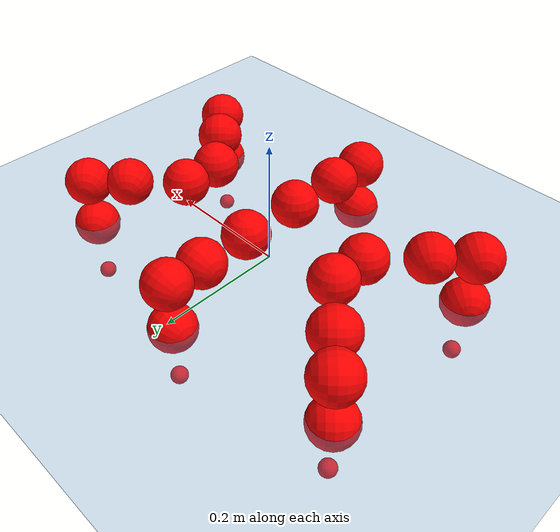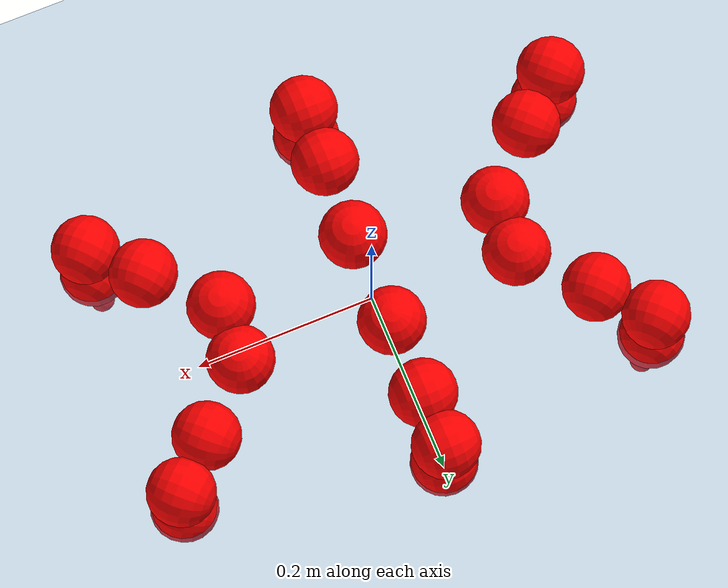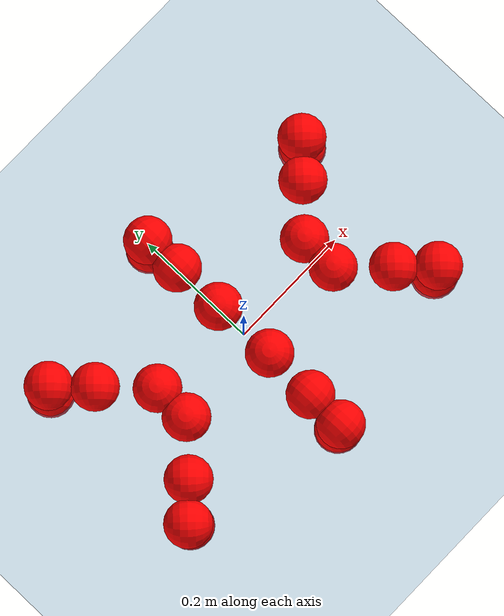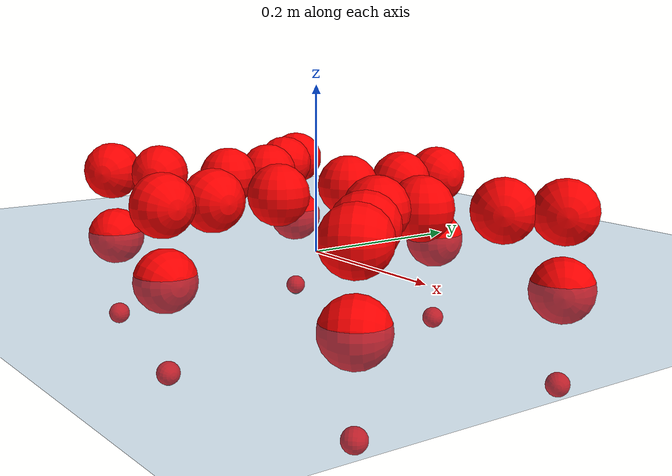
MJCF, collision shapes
<mujoco model="Golem">
  <compiler angle="radian" assetdir="assets" balanceinertia="true" inertiafromgeom="false"/>

  <option timestep="0.005" density="1.2" viscosity="2e-05"/>

  <size nkey="1"/>

  <visual>
    <quality shadowsize="8192"/>
    <map shadowclip="0.5"/>
  </visual>

  <default>
    <default class="/">
      <joint armature="0.01" damping="0.01" frictionloss="0.01"/>
      <geom contype="0" conaffinity="0" group="1" solref="-1000 -80"/>
      <site size="0.01 0.005 0.005" group="5"/>
      <general forcelimited="true" biastype="affine" gainprm="25" biasprm="0 -25 -0.5"/>
      <default class="visual">
        <geom type="mesh" group="2"/>
      </default>
      <default class="collision">
        <geom group="3"/>
      </default>
      <default class="foot">
        <geom size="0.01 0 0" condim="6" group="4" priority="1" solimp="0.015 1 0.01"/>
      </default>
      <default class="reward_collision_sphere">
        <geom group="5" rgba="1 0 0 1"/>
      </default>
    </default>
  </default>

  <asset>
    <texture type="skybox" colorspace="auto" name="//unnamed_texture_0" builtin="gradient" rgb1="0.95 0.95 0.95" rgb2="0.95 0.95 0.95" width="100" height="600"/>
    <texture type="2d" colorspace="auto" name="texplane" builtin="checker" rgb1="0.345 0.575 0.748" rgb2="0.345 0.575 0.748" markrgb="1 1 1" width="512" height="512"/>
    <material name="MatPlane" class="/" texture="texplane" texuniform="true" texrepeat="2 2" specular="0.9"/>
    <mesh name="body" class="/" file="body.stl" scale="0.001 0.001 0.001"/>
    <mesh name="coxa" class="/" file="coxa.stl" scale="0.001 0.001 0.001"/>
    <mesh name="femur" class="/" file="femur.stl" scale="0.001 0.001 0.001"/>
    <mesh name="tibia" class="/" file="tibia.stl" scale="0.001 0.001 0.001"/>
    <mesh name="tarsus" class="/" file="tarsus.stl" scale="0.001 0.001 0.001"/>
  </asset>

  <worldbody>
    <geom name="floor" class="/" size="100 100 0.125" type="plane" group="0" material="MatPlane"/>
    <light name="toplight_shadow" class="/" pos="0 0 5" dir="0.0990148 0.0990148 -0.990148" type="directional" ambient="0.04 0.04 0.04" diffuse="0.55 0.55 0.55" specular="0.12 0.12 0.12"/>
    <light name="toplight_fill" class="/" pos="0 0 5" dir="0.0990148 0.0990148 -0.990148" type="directional" castshadow="false" ambient="0.04 0.04 0.04" diffuse="0.3 0.3 0.3" specular="0.08 0.08 0.08"/>
    <body name="trunk" pos="0.000897197 -0.000999184 0.00101596" quat="1 0.000309897 0.00032775 -0.000228372">
      <inertial pos="0.00267623 -0.00134411 -0.00104803" quat="0.99999 0.000312755 -0.00446758 0.000300874" mass="3.01261" diaginertia="0.0104936 0.000839913 0.0218221"/>
      <joint name="//unnamed_joint_0" type="free"/>
      <geom name="//unnamed_geom_1" class="/" pos="0 0 0.0739913" quat="1 0 0 0" type="mesh" rgba="0.9 0.9 0.9 1" mesh="body"/>
      <site name="imu" class="/" pos="0.129487 -0.00419186 0.10208" size="0.00919711"/>
      <camera name="track" class="/" pos="0 -1.21298 0" quat="0.707107 0.707107 0 0" mode="trackcom"/>
      <camera name="ego_camera" class="/" pos="0.129549 0 0.115611" quat="-0.5 -0.5 0.5 0.5"/>
      <body name="coxa_RR" pos="-0.17609 -0.0509718 0.0746847" quat="0.382527 1.28128e-05 -8.26311e-05 -0.923944">
        <inertial pos="0.000426061 -0.000948676 0.000976878" quat="1 0.000271608 0.00025059 -0.000163383" mass="0.154215" diaginertia="0.00970043 0.000802349 0.0203819"/>
        <joint name="coxa_joint_RR" class="/" pos="0 0 0" axis="0.00361917 -0.00865567 -0.999956" stiffness="0.000611563" range="-3.17188 3.14028" armature="0.00886041" damping="0" frictionloss="0.00922589"/>
        <geom name="//unnamed_geom_2" class="/" type="mesh" rgba="0.2 0.2 0.2 1" mesh="coxa"/>
        <geom name="//unnamed_geom_3" class="reward_collision_sphere" size="0.0367885" pos="-0.0298959 0 0"/>
        <body name="femur_RR" pos="0.0619961 0.00138415 0.00168799" quat="0.500147 -0.49982 0.500344 0.499688">
          <inertial pos="-0.00107031 -0.000175001 -0.00114652" quat="0.999996 0.00228222 0.00113792 -0.000914376" mass="0.152511" diaginertia="0.00983045 0.000798395 0.0201876"/>
          <joint name="femur_joint_RR" class="/" pos="0 0 0" axis="0.0125073 0.00715744 -0.999896" range="-3.13786 3.12688" armature="0.0092292" damping="0.00209674" frictionloss="0.00930525"/>
          <geom name="//unnamed_geom_4" class="/" type="mesh" rgba="0.9 0.9 0.9 1" mesh="femur"/>
          <geom name="//unnamed_geom_5" class="reward_collision_sphere" size="0.0367885"/>
          <body name="tibia_RR" pos="-0.00162234 -0.0655752 -0.00167663" quat="-9.98996e-05 1 2.33603e-07 5.85196e-05">
            <inertial pos="-0.000188105 -0.00255579 0.000133141" quat="0.999909 0.0124498 0.00506764 0.000592361" mass="0.155549" diaginertia="0.0100732 0.000814777 0.0202366"/>
            <joint name="tibia_joint_RR" class="/" pos="0 0 0" axis="0.0103883 -0.00247503 0.999943" range="-3.10468 3.15887" armature="0.00907359" damping="0.0101946" frictionloss="0.00931751"/>
            <geom name="//unnamed_geom_6" class="/" type="mesh" rgba="0.2 0.2 0.2 1" mesh="tibia"/>
            <geom name="//unnamed_geom_7" class="reward_collision_sphere" size="0.0367885"/>
            <body name="tarsus_RR" pos="0.0871193 -0.00270221 -0.00186867" quat="1 -0.00033358 1.25639e-05 0.000381226">
              <inertial pos="0.0598855 0.000439763 -0.00185644" quat="0.501285 0.502662 0.48896 0.506915" mass="0.161225" diaginertia="0.0100331 0.000836913 0.0201529"/>
              <joint name="tarsus_joint_RR" class="/" pos="0 0 0" axis="-0.00217461 -0.00153056 0.999996" range="-3.17379 3.15715" armature="0.00955751" damping="0" frictionloss="0.0102686"/>
              <geom name="//unnamed_geom_8" class="/" type="mesh" rgba="0.9 0.9 0.9 1" mesh="tarsus"/>
              <geom name="foot_1" class="foot" size="0.00941753" pos="0.111611 0 0" quat="0 -0.707107 0 0.707107"/>
              <geom name="//unnamed_geom_10" class="reward_collision_sphere" size="0.0367885"/>
              <geom name="//unnamed_geom_11" class="reward_collision_sphere" size="0.0137957" pos="0.107127 0 0"/>
              <site name="foot_1" class="foot" pos="0.111611 0 0" quat="0 -0.707107 0 0.707107" size="0.00919711"/>
            </body>
          </body>
        </body>
      </body>
      <body name="coxa_RM" pos="-0.00124582 -0.0823957 0.0732146" quat="0.707548 0.000926075 -0.000101758 -0.706664">
        <inertial pos="0.00218755 0.00048451 -0.00211645" quat="1 0.000350856 0.000705857 -0.00017381" mass="0.156922" diaginertia="0.0098071 0.00084341 0.0205431"/>
        <joint name="coxa_joint_RM" class="/" pos="0 0 0" axis="-0.00439602 -0.000461435 -0.99999" range="-3.13678 3.14168" armature="0.0101928" damping="0.0188522" frictionloss="0.00903759"/>
        <geom name="//unnamed_geom_12" class="/" type="mesh" rgba="0.2 0.2 0.2 1" mesh="coxa"/>
        <geom name="//unnamed_geom_13" class="reward_collision_sphere" size="0.0367885" pos="-0.0298959 0 0"/>
        <body name="femur_RM" pos="0.0562686 -0.0030966 0.00146975" quat="0.500037 -0.500575 0.499757 0.49963">
          <inertial pos="0.0026413 -0.00164502 6.69938e-05" quat="0.999997 0.0023446 0.00116488 0.000290837" mass="0.150499" diaginertia="0.00917993 0.00079013 0.0192839"/>
          <joint name="femur_joint_RM" class="/" pos="0 0 0" axis="-0.00927327 0.0016724 -0.999956" range="-3.13292 3.08498" armature="0.0087817" damping="0.0202545" frictionloss="0.00876833"/>
          <geom name="//unnamed_geom_14" class="/" type="mesh" rgba="0.9 0.9 0.9 1" mesh="femur"/>
          <geom name="//unnamed_geom_15" class="reward_collision_sphere" size="0.0367885"/>
          <body name="tibia_RM" pos="-0.000659358 -0.0627849 -0.00106954" quat="-0.000212266 1 -3.32883e-05 0.000650153">
            <inertial pos="-0.00147558 0.00274149 3.00763e-05" quat="0.999979 -0.00103628 0.00565343 -0.0030731" mass="0.151331" diaginertia="0.0097058 0.000807032 0.020251"/>
            <joint name="tibia_joint_RM" class="/" pos="0 0 0" axis="0.00226049 -0.00285779 0.999993" range="-3.12889 3.1697" armature="0.00954454" damping="0.0217985" frictionloss="0.0092359"/>
            <geom name="//unnamed_geom_16" class="/" type="mesh" rgba="0.2 0.2 0.2 1" mesh="tibia"/>
            <geom name="//unnamed_geom_17" class="reward_collision_sphere" size="0.0367885"/>
            <body name="tarsus_RM" pos="0.0850071 -0.0013103 0.000409169" quat="1 -2.40178e-05 8.75329e-05 -3.9836e-05">
              <inertial pos="0.0623821 9.445e-05 -0.000534088" quat="0.500548 0.497788 0.500313 0.501344" mass="0.160292" diaginertia="0.00981587 0.000817706 0.0213571"/>
              <joint name="tarsus_joint_RM" class="/" pos="0 0 0" axis="-0.000904779 -0.0055696 0.999984" range="-3.18448 3.08902" armature="0.00936014" damping="0.00629193" frictionloss="0.00816076"/>
              <geom name="//unnamed_geom_18" class="/" type="mesh" rgba="0.9 0.9 0.9 1" mesh="tarsus"/>
              <geom name="foot_2" class="foot" size="0.0098419" pos="0.111611 0 0" quat="0 -0.707107 0 0.707107"/>
              <geom name="//unnamed_geom_20" class="reward_collision_sphere" size="0.0367885"/>
              <geom name="//unnamed_geom_21" class="reward_collision_sphere" size="0.0137957" pos="0.107127 0 0"/>
              <site name="foot_2" class="foot" pos="0.111611 0 0" quat="0 -0.707107 0 0.707107" size="0.00919711"/>
            </body>
          </body>
        </body>
      </body>
      <body name="coxa_RF" pos="0.17753 -0.0532821 0.0771162" quat="0.923879 -8.67292e-07 -1.63259e-06 -0.382684">
        <inertial pos="0.00123006 -0.00274631 0.00242702" quat="0.999909 0.00355903 0.00114713 0.0129584" mass="0.147209" diaginertia="0.00961399 0.000800963 0.0201869"/>
        <joint name="coxa_joint_RF" class="/" pos="0 0 0" axis="0.00576773 -0.00661651 -0.999961" range="-3.08476 3.15355" armature="0.00803703" damping="0" frictionloss="0.00895003"/>
        <geom name="//unnamed_geom_22" class="/" type="mesh" rgba="0.2 0.2 0.2 1" mesh="coxa"/>
        <geom name="//unnamed_geom_23" class="reward_collision_sphere" size="0.0367885" pos="-0.0298959 0 0"/>
        <body name="femur_RF" pos="0.0599411 -0.0008922 -0.00109307" quat="0.500099 -0.499857 0.500097 0.499946">
          <inertial pos="-0.0020274 0.00256665 0.00044506" quat="0.999991 -0.00183198 0.000320866 -0.00380321" mass="0.155395" diaginertia="0.0101013 0.000849946 0.021535"/>
          <joint name="femur_joint_RF" class="/" pos="0 0 0" axis="-0.00181508 0.000124202 -0.999998" range="-3.1401 3.12704" armature="0.00917937" damping="0.00535846" frictionloss="0.00895218"/>
          <geom name="//unnamed_geom_24" class="/" type="mesh" rgba="0.9 0.9 0.9 1" mesh="femur"/>
          <geom name="//unnamed_geom_25" class="reward_collision_sphere" size="0.0367885"/>
          <body name="tibia_RF" pos="6.86284e-06 -0.0666099 -0.000115526" quat="0.000106279 1 1.01262e-05 5.54075e-05">
            <inertial pos="-9.76009e-05 0.000190105 -0.00268472" quat="0.999916 -0.00205568 -0.00652161 -0.0110245" mass="0.156815" diaginertia="0.0100503 0.000800847 0.0214709"/>
            <joint name="tibia_joint_RF" class="/" pos="0 0 0" axis="-0.00382528 2.88192e-05 0.999993" range="-3.14965 3.15693" armature="0.00933559" damping="0.0074131" frictionloss="0.00969248"/>
            <geom name="//unnamed_geom_26" class="/" type="mesh" rgba="0.2 0.2 0.2 1" mesh="tibia"/>
            <geom name="//unnamed_geom_27" class="reward_collision_sphere" size="0.0367885"/>
            <body name="tarsus_RF" pos="0.0872152 -0.000152652 0.000165936" quat="0.999999 -0.000161163 0.0010105 0.000388639">
              <inertial pos="0.0594916 -0.000893104 -0.000867598" quat="0.502182 0.500225 0.498731 0.498854" mass="0.158697" diaginertia="0.0100917 0.000806432 0.0202965"/>
              <joint name="tarsus_joint_RF" class="/" pos="0 0 0" axis="-0.00124759 -0.0059132 0.999982" stiffness="0.0232977" range="-3.09419 3.1432" armature="0.00857109" damping="0" frictionloss="0.00872847"/>
              <geom name="//unnamed_geom_28" class="/" type="mesh" rgba="0.9 0.9 0.9 1" mesh="tarsus"/>
              <geom name="foot_3" class="foot" size="0.00940599" pos="0.111611 0 0" quat="0 -0.707107 0 0.707107"/>
              <geom name="//unnamed_geom_30" class="reward_collision_sphere" size="0.0367885"/>
              <geom name="//unnamed_geom_31" class="reward_collision_sphere" size="0.0137957" pos="0.107127 0 0"/>
              <site name="foot_3" class="foot" pos="0.111611 0 0" quat="0 -0.707107 0 0.707107" size="0.00919711"/>
            </body>
          </body>
        </body>
      </body>
      <body name="coxa_LR" pos="-0.17487 0.051881 0.0752524" quat="0.382914 1.86e-05 -1.64098e-05 0.923784">
        <inertial pos="-0.00181065 -0.00267404 1.56895e-05" quat="0.999939 0.00869799 0.00481465 0.00480472" mass="0.149771" diaginertia="0.00988528 0.000778802 0.0194636"/>
        <joint name="coxa_joint_LR" class="/" pos="0 0 0" axis="0.000159615 0.000780434 -1" range="-3.16036 3.14647" armature="0.00920932" damping="0.0199785" frictionloss="0.00936008"/>
        <geom name="//unnamed_geom_32" class="/" type="mesh" rgba="0.2 0.2 0.2 1" mesh="coxa"/>
        <geom name="//unnamed_geom_33" class="reward_collision_sphere" size="0.0367885" pos="-0.0298959 0 0"/>
        <body name="femur_LR" pos="0.0621827 -0.00396044 0.000335002" quat="0.499868 -0.499872 0.500444 0.499815">
          <inertial pos="-0.000466858 -0.00261165 -0.000972251" quat="1 -0.000207644 -3.79326e-05 -0.00072916" mass="0.154329" diaginertia="0.00946931 0.000837341 0.0199118"/>
          <joint name="femur_joint_LR" class="/" pos="0 0 0" axis="-5.36098e-05 0.000726205 1" range="-3.0871 3.14468" armature="0.00940294" damping="0.000990602" frictionloss="0.00914849"/>
          <geom name="//unnamed_geom_34" class="/" type="mesh" rgba="0.9 0.9 0.9 1" mesh="femur"/>
          <geom name="//unnamed_geom_35" class="reward_collision_sphere" size="0.0367885"/>
          <body name="tibia_LR" pos="0.00144363 -0.068843 -0.00329822" quat="-0.000302744 1 0.000171726 -0.000395536">
            <inertial pos="0.0010165 -0.00230577 -0.000304685" quat="0.999916 -0.00570297 -0.00258668 0.0113772" mass="0.152208" diaginertia="0.00940478 0.000796512 0.0204092"/>
            <joint name="tibia_joint_LR" class="/" pos="0 0 0" axis="-0.00066497 0.000207793 -1" range="-3.11993 3.19279" armature="0.00885117" damping="0" frictionloss="0.00913003"/>
            <geom name="//unnamed_geom_36" class="/" type="mesh" rgba="0.2 0.2 0.2 1" mesh="tibia"/>
            <geom name="//unnamed_geom_37" class="reward_collision_sphere" size="0.0367885"/>
            <body name="tarsus_LR" pos="0.0869094 0.0021133 -0.00212838" quat="1 -0.000508559 -0.000185968 0.000813304">
              <inertial pos="0.0622671 -0.00239197 -0.00247422" quat="0.499866 0.500124 0.499927 0.500083" mass="0.156476" diaginertia="0.00981509 0.000811088 0.0199436"/>
              <joint name="tarsus_joint_LR" class="/" pos="0 0 0" axis="0.0138564 -0.00714494 -0.999878" range="-3.14165 3.11241" armature="0.00829596" damping="0" frictionloss="0.00860182"/>
              <geom name="//unnamed_geom_38" class="/" type="mesh" rgba="0.9 0.9 0.9 1" mesh="tarsus"/>
              <geom name="foot_4" class="foot" size="0.0101409" pos="0.111611 0 0" quat="0.707107 0 -0.707107 0"/>
              <geom name="//unnamed_geom_40" class="reward_collision_sphere" size="0.0367885"/>
              <geom name="//unnamed_geom_41" class="reward_collision_sphere" size="0.0137957" pos="0.107127 0 0"/>
              <site name="foot_4" class="foot" pos="0.111611 0 0" quat="0.707107 0 -0.707107 0" size="0.00919711"/>
            </body>
          </body>
        </body>
      </body>
      <body name="coxa_LM" pos="-0.00336319 0.0802571 0.0749166" quat="0.707329 -0.000395877 5.25331e-05 0.706885">
        <inertial pos="0.00100887 -0.00204695 6.37786e-05" quat="0.999915 -0.0123421 0.00263854 -0.00339156" mass="0.155925" diaginertia="0.0100635 0.000845969 0.0212815"/>
        <joint name="coxa_joint_LM" class="/" pos="0 0 0" axis="-0.00962641 -0.00850051 -0.999918" range="-3.12687 3.11736" armature="0.0088659" damping="0.0111277" frictionloss="0.00983651"/>
        <geom name="//unnamed_geom_42" class="/" type="mesh" rgba="0.2 0.2 0.2 1" mesh="coxa"/>
        <geom name="//unnamed_geom_43" class="reward_collision_sphere" size="0.0367885" pos="-0.0298959 0 0"/>
        <body name="femur_LM" pos="0.054176 0.000616471 -0.00129698" quat="0.499656 -0.500199 0.500129 0.500016">
          <inertial pos="0.00187159 0.000672223 0.00093147" quat="0.99994 0.00691077 -0.0063773 0.00566542" mass="0.160187" diaginertia="0.0097637 0.000871963 0.0214306"/>
          <joint name="femur_joint_LM" class="/" pos="0 0 0" axis="0.00320812 5.04622e-06 0.999995" range="-3.15696 3.13803" armature="0.00973962" damping="0.0065415" frictionloss="0.00833887"/>
          <geom name="//unnamed_geom_44" class="/" type="mesh" rgba="0.9 0.9 0.9 1" mesh="femur"/>
          <geom name="//unnamed_geom_45" class="reward_collision_sphere" size="0.0367885"/>
          <body name="tibia_LM" pos="-0.00184738 -0.0604042 0.00056461" quat="0.00026238 0.999999 0.000235971 -0.00106448">
            <inertial pos="0.00140638 0.000641418 -0.00258138" quat="0.999911 -0.0106764 0.00797623 0.000425747" mass="0.156544" diaginertia="0.00986881 0.000856873 0.0211167"/>
            <joint name="tibia_joint_LM" class="/" pos="0 0 0" axis="-0.00610097 0.00314492 -0.999976" range="-3.13531 3.13896" armature="0.00933955" damping="0.00012491" frictionloss="0.00809498"/>
            <geom name="//unnamed_geom_46" class="/" type="mesh" rgba="0.2 0.2 0.2 1" mesh="tibia"/>
            <geom name="//unnamed_geom_47" class="reward_collision_sphere" size="0.0367885"/>
            <body name="tarsus_LM" pos="0.085372 -1.81764e-05 -0.000223891" quat="0.999999 -0.000616164 -0.000857001 -0.000373863">
              <inertial pos="0.06063 -0.00105887 0.00100174" quat="0.506559 0.488959 0.503742 0.50056" mass="0.161285" diaginertia="0.0101856 0.00082601 0.0207484"/>
              <joint name="tarsus_joint_LM" class="/" pos="0 0 0" axis="0.0112236 0.0026887 -0.999933" stiffness="0.00586167" range="-3.1427 3.13754" armature="0.00913251" damping="0" frictionloss="0.0104201"/>
              <geom name="//unnamed_geom_48" class="/" type="mesh" rgba="0.9 0.9 0.9 1" mesh="tarsus"/>
              <geom name="foot_5" class="foot" size="0.00921156" pos="0.111611 0 0" quat="0.707107 0 -0.707107 0"/>
              <geom name="//unnamed_geom_50" class="reward_collision_sphere" size="0.0367885"/>
              <geom name="//unnamed_geom_51" class="reward_collision_sphere" size="0.0137957" pos="0.107127 0 0"/>
              <site name="foot_5" class="foot" pos="0.111611 0 0" quat="0.707107 0 -0.707107 0" size="0.00919711"/>
            </body>
          </body>
        </body>
      </body>
      <body name="coxa_LF" pos="0.179814 0.0494525 0.0721378" quat="0.924049 -8.88712e-05 6.34621e-05 0.382274">
        <inertial pos="-0.000348309 0.000213954 0.00267785" quat="0.999943 0.0104159 -0.00116215 0.00223444" mass="0.151709" diaginertia="0.00944032 0.000842936 0.0200951"/>
        <joint name="coxa_joint_LF" class="/" pos="0 0 0" axis="0.00182765 -0.0158923 -0.999872" range="-3.12072 3.14189" armature="0.00803515" damping="0" frictionloss="0.010375"/>
        <geom name="//unnamed_geom_52" class="/" type="mesh" rgba="0.2 0.2 0.2 1" mesh="coxa"/>
        <geom name="//unnamed_geom_53" class="reward_collision_sphere" size="0.0367885" pos="-0.0298959 0 0"/>
        <body name="femur_LF" pos="0.0589284 0.000298322 0.000481504" quat="0.499789 -0.500118 0.499983 0.500109">
          <inertial pos="-0.00267661 -0.000546566 0.00251587" quat="1 -0.000220552 -0.000152938 -0.000270804" mass="0.155607" diaginertia="0.0102191 0.000820063 0.020702"/>
          <joint name="femur_joint_LF" class="/" pos="0 0 0" axis="-0.00163733 -7.41756e-06 0.999999" range="-3.1291 3.13183" armature="0.00985515" damping="0.00161011" frictionloss="0.00871914"/>
          <geom name="//unnamed_geom_54" class="/" type="mesh" rgba="0.9 0.9 0.9 1" mesh="femur"/>
          <geom name="//unnamed_geom_55" class="reward_collision_sphere" size="0.0367885"/>
          <body name="tibia_LF" pos="-0.000499669 -0.0648537 -0.000134039" quat="0.000508902 1 0.00032865 0.000147221">
            <inertial pos="-0.000100731 -0.0023503 0.000748367" quat="1 1.77601e-07 5.2337e-07 5.50442e-07" mass="0.150386" diaginertia="0.00919971 0.000798016 0.0198583"/>
            <joint name="tibia_joint_LF" class="/" pos="0 0 0" axis="0.000805225 -0.00257257 -0.999996" range="-3.14636 3.12807" armature="0.0101557" damping="0" frictionloss="0.00943284"/>
            <geom name="//unnamed_geom_56" class="/" type="mesh" rgba="0.2 0.2 0.2 1" mesh="tibia"/>
            <geom name="//unnamed_geom_57" class="reward_collision_sphere" size="0.0367885"/>
            <body name="tarsus_LF" pos="0.0855368 0.000335694 0.00204824" quat="1 -0.000373041 -2.93659e-05 -0.000180368">
              <inertial pos="0.0593753 0.00171774 0.000833984" quat="0.501135 0.494407 0.49897 0.505425" mass="0.146266" diaginertia="0.00947966 0.000770019 0.0200157"/>
              <joint name="tarsus_joint_LF" class="/" pos="0 0 0" axis="-0.00121634 -0.000195381 -0.999999" range="-3.15954 3.13722" armature="0.0103726" damping="0.010235" frictionloss="0.00797182"/>
              <geom name="//unnamed_geom_58" class="/" type="mesh" rgba="0.9 0.9 0.9 1" mesh="tarsus"/>
              <geom name="foot_6" class="foot" size="0.00901291" pos="0.111611 0 0" quat="0.707107 0 -0.707107 0"/>
              <geom name="//unnamed_geom_60" class="reward_collision_sphere" size="0.0367885"/>
              <geom name="//unnamed_geom_61" class="reward_collision_sphere" size="0.0137957" pos="0.107127 0 0"/>
              <site name="foot_6" class="foot" pos="0.111611 0 0" quat="0.707107 0 -0.707107 0" size="0.00919711"/>
            </body>
          </body>
        </body>
      </body>
    </body>
  </worldbody>

  <contact>
    <pair class="/" geom1="floor" geom2="foot_1" name="//unnamed_contact_0"/>
    <pair class="/" geom1="floor" geom2="foot_2" name="//unnamed_contact_1"/>
    <pair class="/" geom1="floor" geom2="foot_3" name="//unnamed_contact_2"/>
    <pair class="/" geom1="floor" geom2="foot_4" name="//unnamed_contact_3"/>
    <pair class="/" geom1="floor" geom2="foot_5" name="//unnamed_contact_4"/>
    <pair class="/" geom1="floor" geom2="foot_6" name="//unnamed_contact_5"/>
  </contact>

  <actuator>
    <general name="coxa_joint_RR" class="/" joint="coxa_joint_RR" forcerange="-6.82529 6.82529" gainprm="23.3844" biasprm="0 -23.3844 -0.48639"/>
    <general name="femur_joint_RR" class="/" joint="femur_joint_RR" forcerange="-6.76509 6.76509" gainprm="23.3844" biasprm="0 -23.3844 -0.48639"/>
    <general name="tibia_joint_RR" class="/" joint="tibia_joint_RR" forcerange="-6.92932 6.92932" gainprm="23.3844" biasprm="0 -23.3844 -0.48639"/>
    <general name="tarsus_joint_RR" class="/" joint="tarsus_joint_RR" forcerange="-7.3763 7.3763" gainprm="23.3844" biasprm="0 -23.3844 -0.48639"/>
    <general name="coxa_joint_RM" class="/" joint="coxa_joint_RM" forcerange="-6.63892 6.63892" gainprm="23.3844" biasprm="0 -23.3844 -0.48639"/>
    <general name="femur_joint_RM" class="/" joint="femur_joint_RM" forcerange="-6.68538 6.68538" gainprm="23.3844" biasprm="0 -23.3844 -0.48639"/>
    <general name="tibia_joint_RM" class="/" joint="tibia_joint_RM" forcerange="-6.66365 6.66365" gainprm="23.3844" biasprm="0 -23.3844 -0.48639"/>
    <general name="tarsus_joint_RM" class="/" joint="tarsus_joint_RM" forcerange="-7.3937 7.3937" gainprm="23.3844" biasprm="0 -23.3844 -0.48639"/>
    <general name="coxa_joint_RF" class="/" joint="coxa_joint_RF" forcerange="-6.94682 6.94682" gainprm="23.3844" biasprm="0 -23.3844 -0.48639"/>
    <general name="femur_joint_RF" class="/" joint="femur_joint_RF" forcerange="-6.03305 6.03305" gainprm="23.3844" biasprm="0 -23.3844 -0.48639"/>
    <general name="tibia_joint_RF" class="/" joint="tibia_joint_RF" forcerange="-7.12004 7.12004" gainprm="23.3844" biasprm="0 -23.3844 -0.48639"/>
    <general name="tarsus_joint_RF" class="/" joint="tarsus_joint_RF" forcerange="-6.24229 6.24229" gainprm="23.3844" biasprm="0 -23.3844 -0.48639"/>
    <general name="coxa_joint_LR" class="/" joint="coxa_joint_LR" forcerange="-6.39081 6.39081" gainprm="23.3844" biasprm="0 -23.3844 -0.48639"/>
    <general name="femur_joint_LR" class="/" joint="femur_joint_LR" forcerange="-6.85422 6.85422" gainprm="23.3844" biasprm="0 -23.3844 -0.48639"/>
    <general name="tibia_joint_LR" class="/" joint="tibia_joint_LR" forcerange="-6.70391 6.70391" gainprm="23.3844" biasprm="0 -23.3844 -0.48639"/>
    <general name="tarsus_joint_LR" class="/" joint="tarsus_joint_LR" forcerange="-6.38234 6.38234" gainprm="23.3844" biasprm="0 -23.3844 -0.48639"/>
    <general name="coxa_joint_LM" class="/" joint="coxa_joint_LM" forcerange="-6.96186 6.96186" gainprm="23.3844" biasprm="0 -23.3844 -0.48639"/>
    <general name="femur_joint_LM" class="/" joint="femur_joint_LM" forcerange="-6.31264 6.31264" gainprm="23.3844" biasprm="0 -23.3844 -0.48639"/>
    <general name="tibia_joint_LM" class="/" joint="tibia_joint_LM" forcerange="-6.77503 6.77503" gainprm="23.3844" biasprm="0 -23.3844 -0.48639"/>
    <general name="tarsus_joint_LM" class="/" joint="tarsus_joint_LM" forcerange="-6.98309 6.98309" gainprm="23.3844" biasprm="0 -23.3844 -0.48639"/>
    <general name="coxa_joint_LF" class="/" joint="coxa_joint_LF" forcerange="-6.05949 6.05949" gainprm="23.3844" biasprm="0 -23.3844 -0.48639"/>
    <general name="femur_joint_LF" class="/" joint="femur_joint_LF" forcerange="-6.38548 6.38548" gainprm="23.3844" biasprm="0 -23.3844 -0.48639"/>
    <general name="tibia_joint_LF" class="/" joint="tibia_joint_LF" forcerange="-7.03239 7.03239" gainprm="23.3844" biasprm="0 -23.3844 -0.48639"/>
    <general name="tarsus_joint_LF" class="/" joint="tarsus_joint_LF" forcerange="-6.82494 6.82494" gainprm="23.3844" biasprm="0 -23.3844 -0.48639"/>
  </actuator>

  <sensor>
    <gyro site="imu" name="imu_angular_velocity"/>
    <velocimeter site="imu" name="imu_linear_velocity"/>
    <framelinvel objtype="site" objname="foot_1" name="foot_1_global_linear_velocity"/>
    <framelinvel objtype="site" objname="foot_2" name="foot_2_global_linear_velocity"/>
    <framelinvel objtype="site" objname="foot_3" name="foot_3_global_linear_velocity"/>
    <framelinvel objtype="site" objname="foot_4" name="foot_4_global_linear_velocity"/>
    <framelinvel objtype="site" objname="foot_5" name="foot_5_global_linear_velocity"/>
    <framelinvel objtype="site" objname="foot_6" name="foot_6_global_linear_velocity"/>
  </sensor>

  <keyframe>
    <key name="home" qpos="0 0 0.1457 1 0 0 0 0 0 0 0 0 0 0 0 0 0 0 0 0 0 0 0 0 0 0 0 0 0 0 0"/>
  </keyframe>
</mujoco>
